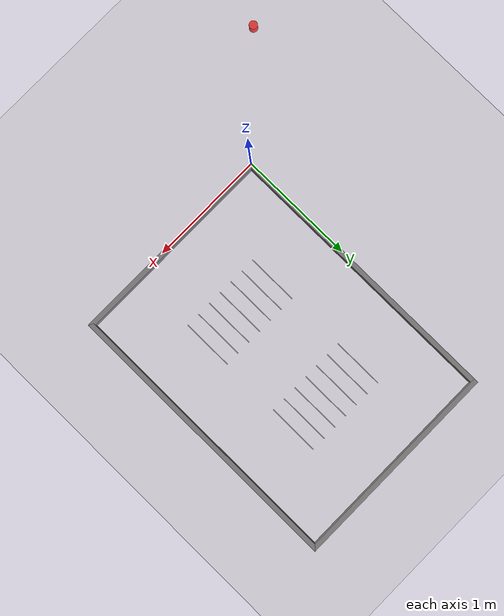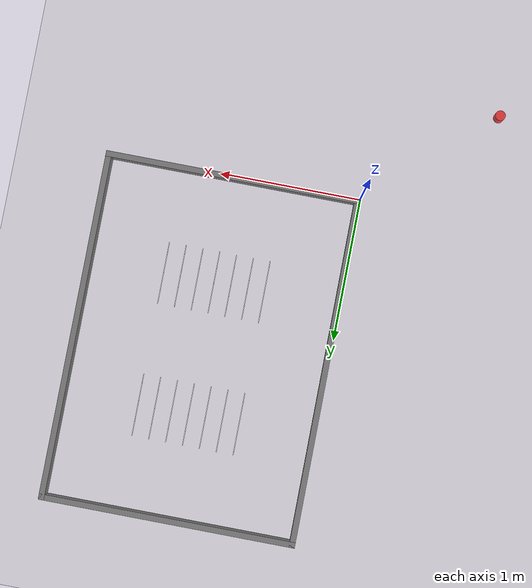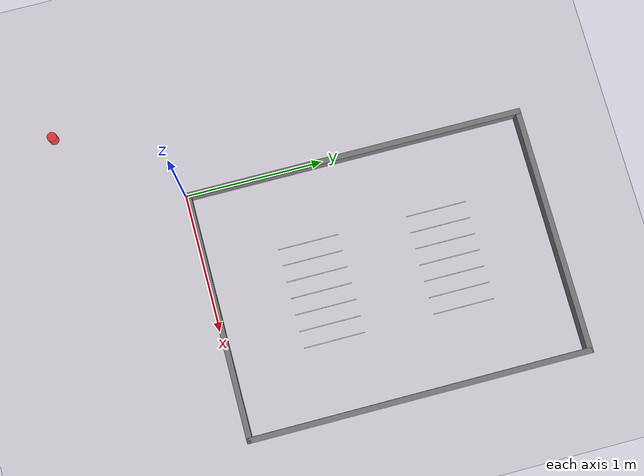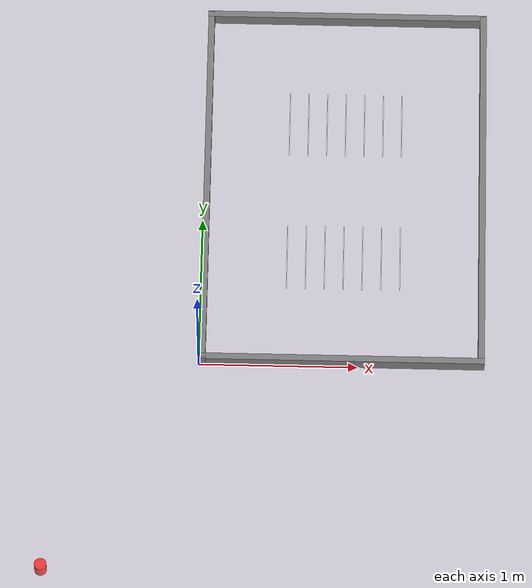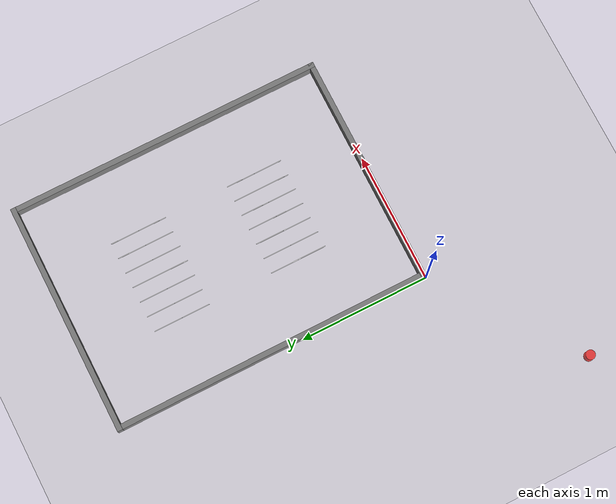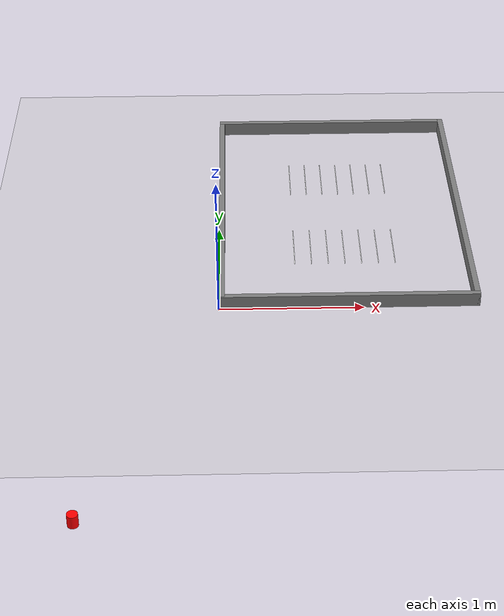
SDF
<sdf version="1.6">
 <world name="parking">
  <include><uri>model://sun</uri></include>
  <include><uri>model://ground_plane</uri></include>
  <plugin name="gazebo_ros_state" filename="libgazebo_ros_state.so">
   <ros><namespace>/</namespace></ros>
   <update_rate>20</update_rate>
  </plugin>
  <model name="pieton">
   <pose>-1 -1 -1 0 0 0</pose>
   <link name="corps">
    <kinematic>true</kinematic>
    <gravity>false</gravity>
    <collision name="collision">
     <geometry><cylinder><radius>0.04</radius><length>0.10</length></cylinder></geometry>
    </collision>
    <visual name="visuel">
     <geometry><cylinder><radius>0.04</radius><length>0.10</length></cylinder></geometry>
     <material><ambient>1 0 0 1</ambient><diffuse>1 0 0 1</diffuse></material>
    </visual>
   </link>
  </model>
  <model name="mur_bas">
   <static>true</static>
   <pose>0.900 0.020 0.050 0 0 0</pose>
   <link name="corps">
    <collision name="collision"><geometry><box><size>1.800 0.040 0.100</size></box></geometry></collision>
    <visual name="visuel">
     <geometry><box><size>1.800 0.040 0.100</size></box></geometry>
     <material><ambient>0.5 0.5 0.5 1</ambient><diffuse>0.5 0.5 0.5 1</diffuse></material>
    </visual>
   </link>
  </model>
  <model name="mur_haut">
   <static>true</static>
   <pose>0.900 2.440 0.050 0 0 0</pose>
   <link name="corps">
    <collision name="collision"><geometry><box><size>1.800 0.040 0.100</size></box></geometry></collision>
    <visual name="visuel">
     <geometry><box><size>1.800 0.040 0.100</size></box></geometry>
     <material><ambient>0.5 0.5 0.5 1</ambient><diffuse>0.5 0.5 0.5 1</diffuse></material>
    </visual>
   </link>
  </model>
  <model name="mur_gauche">
   <static>true</static>
   <pose>0.020 1.230 0.050 0 0 0</pose>
   <link name="corps">
    <collision name="collision"><geometry><box><size>0.040 2.460 0.100</size></box></geometry></collision>
    <visual name="visuel">
     <geometry><box><size>0.040 2.460 0.100</size></box></geometry>
     <material><ambient>0.5 0.5 0.5 1</ambient><diffuse>0.5 0.5 0.5 1</diffuse></material>
    </visual>
   </link>
  </model>
  <model name="mur_droit">
   <static>true</static>
   <pose>1.780 1.230 0.050 0 0 0</pose>
   <link name="corps">
    <collision name="collision"><geometry><box><size>0.040 2.460 0.100</size></box></geometry></collision>
    <visual name="visuel">
     <geometry><box><size>0.040 2.460 0.100</size></box></geometry>
     <material><ambient>0.5 0.5 0.5 1</ambient><diffuse>0.5 0.5 0.5 1</diffuse></material>
    </visual>
   </link>
  </model>
  <model name="trait_A1">
   <static>true</static>
   <pose>0.540 0.650 0.0005 0 0 0</pose>
   <link name="corps">
    <visual name="visuel">
     <geometry><box><size>0.005 0.220 0.001</size></box></geometry>
     <material><ambient>1 1 1 1</ambient><diffuse>1 1 1 1</diffuse></material>
    </visual>
   </link>
  </model>
  <model name="trait_A2">
   <static>true</static>
   <pose>0.660 0.650 0.0005 0 0 0</pose>
   <link name="corps">
    <visual name="visuel">
     <geometry><box><size>0.005 0.220 0.001</size></box></geometry>
     <material><ambient>1 1 1 1</ambient><diffuse>1 1 1 1</diffuse></material>
    </visual>
   </link>
  </model>
  <model name="trait_A3">
   <static>true</static>
   <pose>0.780 0.650 0.0005 0 0 0</pose>
   <link name="corps">
    <visual name="visuel">
     <geometry><box><size>0.005 0.220 0.001</size></box></geometry>
     <material><ambient>1 1 1 1</ambient><diffuse>1 1 1 1</diffuse></material>
    </visual>
   </link>
  </model>
  <model name="trait_A4">
   <static>true</static>
   <pose>0.900 0.650 0.0005 0 0 0</pose>
   <link name="corps">
    <visual name="visuel">
     <geometry><box><size>0.005 0.220 0.001</size></box></geometry>
     <material><ambient>1 1 1 1</ambient><diffuse>1 1 1 1</diffuse></material>
    </visual>
   </link>
  </model>
  <model name="trait_A5">
   <static>true</static>
   <pose>1.020 0.650 0.0005 0 0 0</pose>
   <link name="corps">
    <visual name="visuel">
     <geometry><box><size>0.005 0.220 0.001</size></box></geometry>
     <material><ambient>1 1 1 1</ambient><diffuse>1 1 1 1</diffuse></material>
    </visual>
   </link>
  </model>
  <model name="trait_A6">
   <static>true</static>
   <pose>1.140 0.650 0.0005 0 0 0</pose>
   <link name="corps">
    <visual name="visuel">
     <geometry><box><size>0.005 0.220 0.001</size></box></geometry>
     <material><ambient>1 1 1 1</ambient><diffuse>1 1 1 1</diffuse></material>
    </visual>
   </link>
  </model>
  <model name="trait_A6_d">
   <static>true</static>
   <pose>1.260 0.650 0.0005 0 0 0</pose>
   <link name="corps">
    <visual name="visuel">
     <geometry><box><size>0.005 0.220 0.001</size></box></geometry>
     <material><ambient>1 1 1 1</ambient><diffuse>1 1 1 1</diffuse></material>
    </visual>
   </link>
  </model>
  <model name="trait_B1">
   <static>true</static>
   <pose>0.540 0.870 0.0005 0 0 0</pose>
   <link name="corps">
    <visual name="visuel">
     <geometry><box><size>0.005 0.220 0.001</size></box></geometry>
     <material><ambient>1 1 1 1</ambient><diffuse>1 1 1 1</diffuse></material>
    </visual>
   </link>
  </model>
  <model name="trait_B2">
   <static>true</static>
   <pose>0.660 0.870 0.0005 0 0 0</pose>
   <link name="corps">
    <visual name="visuel">
     <geometry><box><size>0.005 0.220 0.001</size></box></geometry>
     <material><ambient>1 1 1 1</ambient><diffuse>1 1 1 1</diffuse></material>
    </visual>
   </link>
  </model>
  <model name="trait_B3">
   <static>true</static>
   <pose>0.780 0.870 0.0005 0 0 0</pose>
   <link name="corps">
    <visual name="visuel">
     <geometry><box><size>0.005 0.220 0.001</size></box></geometry>
     <material><ambient>1 1 1 1</ambient><diffuse>1 1 1 1</diffuse></material>
    </visual>
   </link>
  </model>
  <model name="trait_B4">
   <static>true</static>
   <pose>0.900 0.870 0.0005 0 0 0</pose>
   <link name="corps">
    <visual name="visuel">
     <geometry><box><size>0.005 0.220 0.001</size></box></geometry>
     <material><ambient>1 1 1 1</ambient><diffuse>1 1 1 1</diffuse></material>
    </visual>
   </link>
  </model>
  <model name="trait_B5">
   <static>true</static>
   <pose>1.020 0.870 0.0005 0 0 0</pose>
   <link name="corps">
    <visual name="visuel">
     <geometry><box><size>0.005 0.220 0.001</size></box></geometry>
     <material><ambient>1 1 1 1</ambient><diffuse>1 1 1 1</diffuse></material>
    </visual>
   </link>
  </model>
  <model name="trait_B6">
   <static>true</static>
   <pose>1.140 0.870 0.0005 0 0 0</pose>
   <link name="corps">
    <visual name="visuel">
     <geometry><box><size>0.005 0.220 0.001</size></box></geometry>
     <material><ambient>1 1 1 1</ambient><diffuse>1 1 1 1</diffuse></material>
    </visual>
   </link>
  </model>
  <model name="trait_B6_d">
   <static>true</static>
   <pose>1.260 0.870 0.0005 0 0 0</pose>
   <link name="corps">
    <visual name="visuel">
     <geometry><box><size>0.005 0.220 0.001</size></box></geometry>
     <material><ambient>1 1 1 1</ambient><diffuse>1 1 1 1</diffuse></material>
    </visual>
   </link>
  </model>
  <model name="trait_C1">
   <static>true</static>
   <pose>0.540 1.590 0.0005 0 0 0</pose>
   <link name="corps">
    <visual name="visuel">
     <geometry><box><size>0.005 0.220 0.001</size></box></geometry>
     <material><ambient>1 1 1 1</ambient><diffuse>1 1 1 1</diffuse></material>
    </visual>
   </link>
  </model>
  <model name="trait_C2">
   <static>true</static>
   <pose>0.660 1.590 0.0005 0 0 0</pose>
   <link name="corps">
    <visual name="visuel">
     <geometry><box><size>0.005 0.220 0.001</size></box></geometry>
     <material><ambient>1 1 1 1</ambient><diffuse>1 1 1 1</diffuse></material>
    </visual>
   </link>
  </model>
  <model name="trait_C3">
   <static>true</static>
   <pose>0.780 1.590 0.0005 0 0 0</pose>
   <link name="corps">
    <visual name="visuel">
     <geometry><box><size>0.005 0.220 0.001</size></box></geometry>
     <material><ambient>1 1 1 1</ambient><diffuse>1 1 1 1</diffuse></material>
    </visual>
   </link>
  </model>
  <model name="trait_C4">
   <static>true</static>
   <pose>0.900 1.590 0.0005 0 0 0</pose>
   <link name="corps">
    <visual name="visuel">
     <geometry><box><size>0.005 0.220 0.001</size></box></geometry>
     <material><ambient>1 1 1 1</ambient><diffuse>1 1 1 1</diffuse></material>
    </visual>
   </link>
  </model>
  <model name="trait_C5">
   <static>true</static>
   <pose>1.020 1.590 0.0005 0 0 0</pose>
   <link name="corps">
    <visual name="visuel">
     <geometry><box><size>0.005 0.220 0.001</size></box></geometry>
     <material><ambient>1 1 1 1</ambient><diffuse>1 1 1 1</diffuse></material>
    </visual>
   </link>
  </model>
  <model name="trait_C6">
   <static>true</static>
   <pose>1.140 1.590 0.0005 0 0 0</pose>
   <link name="corps">
    <visual name="visuel">
     <geometry><box><size>0.005 0.220 0.001</size></box></geometry>
     <material><ambient>1 1 1 1</ambient><diffuse>1 1 1 1</diffuse></material>
    </visual>
   </link>
  </model>
  <model name="trait_C6_d">
   <static>true</static>
   <pose>1.260 1.590 0.0005 0 0 0</pose>
   <link name="corps">
    <visual name="visuel">
     <geometry><box><size>0.005 0.220 0.001</size></box></geometry>
     <material><ambient>1 1 1 1</ambient><diffuse>1 1 1 1</diffuse></material>
    </visual>
   </link>
  </model>
  <model name="trait_D1">
   <static>true</static>
   <pose>0.540 1.810 0.0005 0 0 0</pose>
   <link name="corps">
    <visual name="visuel">
     <geometry><box><size>0.005 0.220 0.001</size></box></geometry>
     <material><ambient>1 1 1 1</ambient><diffuse>1 1 1 1</diffuse></material>
    </visual>
   </link>
  </model>
  <model name="trait_D2">
   <static>true</static>
   <pose>0.660 1.810 0.0005 0 0 0</pose>
   <link name="corps">
    <visual name="visuel">
     <geometry><box><size>0.005 0.220 0.001</size></box></geometry>
     <material><ambient>1 1 1 1</ambient><diffuse>1 1 1 1</diffuse></material>
    </visual>
   </link>
  </model>
  <model name="trait_D3">
   <static>true</static>
   <pose>0.780 1.810 0.0005 0 0 0</pose>
   <link name="corps">
    <visual name="visuel">
     <geometry><box><size>0.005 0.220 0.001</size></box></geometry>
     <material><ambient>1 1 1 1</ambient><diffuse>1 1 1 1</diffuse></material>
    </visual>
   </link>
  </model>
  <model name="trait_D4">
   <static>true</static>
   <pose>0.900 1.810 0.0005 0 0 0</pose>
   <link name="corps">
    <visual name="visuel">
     <geometry><box><size>0.005 0.220 0.001</size></box></geometry>
     <material><ambient>1 1 1 1</ambient><diffuse>1 1 1 1</diffuse></material>
    </visual>
   </link>
  </model>
  <model name="trait_D5">
   <static>true</static>
   <pose>1.020 1.810 0.0005 0 0 0</pose>
   <link name="corps">
    <visual name="visuel">
     <geometry><box><size>0.005 0.220 0.001</size></box></geometry>
     <material><ambient>1 1 1 1</ambient><diffuse>1 1 1 1</diffuse></material>
    </visual>
   </link>
  </model>
  <model name="trait_D6">
   <static>true</static>
   <pose>1.140 1.810 0.0005 0 0 0</pose>
   <link name="corps">
    <visual name="visuel">
     <geometry><box><size>0.005 0.220 0.001</size></box></geometry>
     <material><ambient>1 1 1 1</ambient><diffuse>1 1 1 1</diffuse></material>
    </visual>
   </link>
  </model>
  <model name="trait_D6_d">
   <static>true</static>
   <pose>1.260 1.810 0.0005 0 0 0</pose>
   <link name="corps">
    <visual name="visuel">
     <geometry><box><size>0.005 0.220 0.001</size></box></geometry>
     <material><ambient>1 1 1 1</ambient><diffuse>1 1 1 1</diffuse></material>
    </visual>
   </link>
  </model>
 </world>
</sdf>
